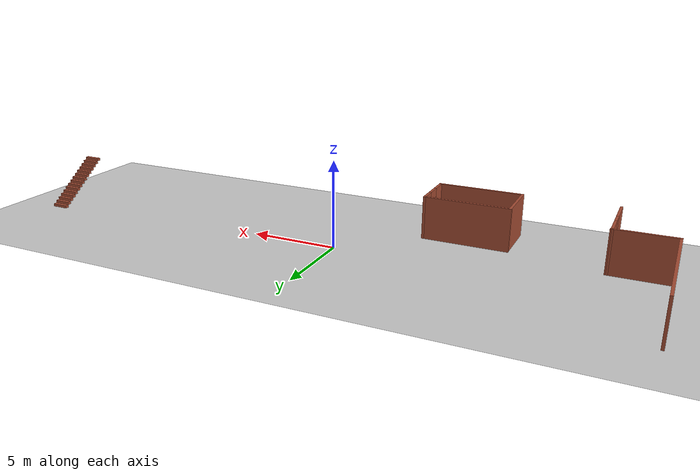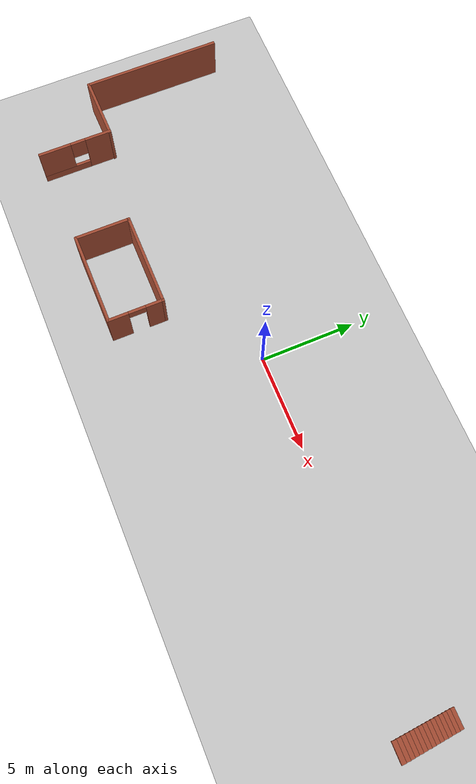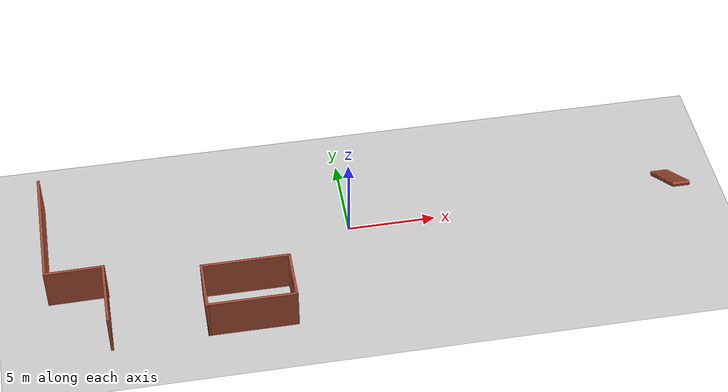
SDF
<sdf version="1.6">
 <world name="default">
  <model name="ground_plane">
   <static>1</static>
   <link name="link">
    <collision name="collision">
     <geometry><plane><normal>0 0 1</normal><size>100 100</size></plane></geometry>
     <surface><friction><ode><mu>100</mu><mu2>50</mu2></ode></friction></surface>
    </collision>
    <visual name="visual">
     <cast_shadows>0</cast_shadows>
     <geometry><plane><normal>0 0 1</normal><size>100 100</size></plane></geometry>
     <material>
      <script><uri>file://media/materials/scripts/gazebo.material</uri><name>Gazebo/Grey</name></script>
     </material>
    </visual>
   </link>
  </model>
  <model name="wonkyBuilding">
   <link name="Stairs_1">
    <visual name="Stairs_1_Visual_0">
     <pose>24.2059 11.9696 0.083333 0 -0 0</pose>
     <geometry><box><size>1 0.233333 0.166667</size></box></geometry>
     <material>
      <script><uri>file://media/materials/scripts/gazebo.material</uri><name>Gazebo/Bricks</name></script>
      <ambient>1 1 1 1</ambient>
      <shader type="pixel"/>
      <diffuse>1 1 1 1</diffuse>
      <specular>0.2 0.2 0.2 1</specular>
      <emissive>0 0 0 1</emissive>
     </material>
     <meta><layer>0</layer></meta>
    </visual>
    <visual name="Stairs_1_Visual_1">
     <pose>24.2059 11.7363 0.25 0 -0 0</pose>
     <geometry><box><size>1 0.233333 0.166667</size></box></geometry>
     <material>
      <script><uri>file://media/materials/scripts/gazebo.material</uri><name>Gazebo/Bricks</name></script>
      <ambient>1 1 1 1</ambient>
      <shader type="pixel"/>
      <diffuse>1 1 1 1</diffuse>
      <specular>0.2 0.2 0.2 1</specular>
      <emissive>0 0 0 1</emissive>
     </material>
     <meta><layer>0</layer></meta>
    </visual>
    <visual name="Stairs_1_Visual_2">
     <pose>24.2059 11.5029 0.416667 0 -0 0</pose>
     <geometry><box><size>1 0.233333 0.166667</size></box></geometry>
     <material>
      <script><uri>file://media/materials/scripts/gazebo.material</uri><name>Gazebo/Bricks</name></script>
      <ambient>1 1 1 1</ambient>
      <shader type="pixel"/>
      <diffuse>1 1 1 1</diffuse>
      <specular>0.2 0.2 0.2 1</specular>
      <emissive>0 0 0 1</emissive>
     </material>
     <meta><layer>0</layer></meta>
    </visual>
    <visual name="Stairs_1_Visual_3">
     <pose>24.2059 11.2696 0.583333 0 -0 0</pose>
     <geometry><box><size>1 0.233333 0.166667</size></box></geometry>
     <material>
      <script><uri>file://media/materials/scripts/gazebo.material</uri><name>Gazebo/Bricks</name></script>
      <ambient>1 1 1 1</ambient>
      <shader type="pixel"/>
      <diffuse>1 1 1 1</diffuse>
      <specular>0.2 0.2 0.2 1</specular>
      <emissive>0 0 0 1</emissive>
     </material>
     <meta><layer>0</layer></meta>
    </visual>
    <visual name="Stairs_1_Visual_4">
     <pose>24.2059 11.0363 0.75 0 -0 0</pose>
     <geometry><box><size>1 0.233333 0.166667</size></box></geometry>
     <material>
      <script><uri>file://media/materials/scripts/gazebo.material</uri><name>Gazebo/Bricks</name></script>
      <ambient>1 1 1 1</ambient>
      <shader type="pixel"/>
      <diffuse>1 1 1 1</diffuse>
      <specular>0.2 0.2 0.2 1</specular>
      <emissive>0 0 0 1</emissive>
     </material>
     <meta><layer>0</layer></meta>
    </visual>
    <visual name="Stairs_1_Visual_5">
     <pose>24.2059 10.8029 0.916667 0 -0 0</pose>
     <geometry><box><size>1 0.233333 0.166667</size></box></geometry>
     <material>
      <script><uri>file://media/materials/scripts/gazebo.material</uri><name>Gazebo/Bricks</name></script>
      <ambient>1 1 1 1</ambient>
      <shader type="pixel"/>
      <diffuse>1 1 1 1</diffuse>
      <specular>0.2 0.2 0.2 1</specular>
      <emissive>0 0 0 1</emissive>
     </material>
     <meta><layer>0</layer></meta>
    </visual>
    <visual name="Stairs_1_Visual_6">
     <pose>24.2059 10.5696 1.08333 0 -0 0</pose>
     <geometry><box><size>1 0.233333 0.166667</size></box></geometry>
     <material>
      <script><uri>file://media/materials/scripts/gazebo.material</uri><name>Gazebo/Bricks</name></script>
      <ambient>1 1 1 1</ambient>
      <shader type="pixel"/>
      <diffuse>1 1 1 1</diffuse>
      <specular>0.2 0.2 0.2 1</specular>
      <emissive>0 0 0 1</emissive>
     </material>
     <meta><layer>0</layer></meta>
    </visual>
    <visual name="Stairs_1_Visual_7">
     <pose>24.2059 10.3363 1.25 0 -0 0</pose>
     <geometry><box><size>1 0.233333 0.166667</size></box></geometry>
     <material>
      <script><uri>file://media/materials/scripts/gazebo.material</uri><name>Gazebo/Bricks</name></script>
      <ambient>1 1 1 1</ambient>
      <shader type="pixel"/>
      <diffuse>1 1 1 1</diffuse>
      <specular>0.2 0.2 0.2 1</specular>
      <emissive>0 0 0 1</emissive>
     </material>
     <meta><layer>0</layer></meta>
    </visual>
    <visual name="Stairs_1_Visual_8">
     <pose>24.2059 10.1029 1.41667 0 -0 0</pose>
     <geometry><box><size>1 0.233333 0.166667</size></box></geometry>
     <material>
      <script><uri>file://media/materials/scripts/gazebo.material</uri><name>Gazebo/Bricks</name></script>
      <ambient>1 1 1 1</ambient>
      <shader type="pixel"/>
      <diffuse>1 1 1 1</diffuse>
      <specular>0.2 0.2 0.2 1</specular>
      <emissive>0 0 0 1</emissive>
     </material>
     <meta><layer>0</layer></meta>
    </visual>
    <visual name="Stairs_1_Visual_9">
     <pose>24.2059 9.86959 1.58333 0 -0 0</pose>
     <geometry><box><size>1 0.233333 0.166667</size></box></geometry>
     <material>
      <script><uri>file://media/materials/scripts/gazebo.material</uri><name>Gazebo/Bricks</name></script>
      <ambient>1 1 1 1</ambient>
      <shader type="pixel"/>
      <diffuse>1 1 1 1</diffuse>
      <specular>0.2 0.2 0.2 1</specular>
      <emissive>0 0 0 1</emissive>
     </material>
     <meta><layer>0</layer></meta>
    </visual>
    <visual name="Stairs_1_Visual_10">
     <pose>24.2059 9.63626 1.75 0 -0 0</pose>
     <geometry><box><size>1 0.233333 0.166667</size></box></geometry>
     <material>
      <script><uri>file://media/materials/scripts/gazebo.material</uri><name>Gazebo/Bricks</name></script>
      <ambient>1 1 1 1</ambient>
      <shader type="pixel"/>
      <diffuse>1 1 1 1</diffuse>
      <specular>0.2 0.2 0.2 1</specular>
      <emissive>0 0 0 1</emissive>
     </material>
     <meta><layer>0</layer></meta>
    </visual>
    <visual name="Stairs_1_Visual_11">
     <pose>24.2059 9.40292 1.91667 0 -0 0</pose>
     <geometry><box><size>1 0.233333 0.166667</size></box></geometry>
     <material>
      <script><uri>file://media/materials/scripts/gazebo.material</uri><name>Gazebo/Bricks</name></script>
      <ambient>1 1 1 1</ambient>
      <shader type="pixel"/>
      <diffuse>1 1 1 1</diffuse>
      <specular>0.2 0.2 0.2 1</specular>
      <emissive>0 0 0 1</emissive>
     </material>
     <meta><layer>0</layer></meta>
    </visual>
    <visual name="Stairs_1_Visual_12">
     <pose>24.2059 9.16959 2.08333 0 -0 0</pose>
     <geometry><box><size>1 0.233333 0.166667</size></box></geometry>
     <material>
      <script><uri>file://media/materials/scripts/gazebo.material</uri><name>Gazebo/Bricks</name></script>
      <ambient>1 1 1 1</ambient>
      <shader type="pixel"/>
      <diffuse>1 1 1 1</diffuse>
      <specular>0.2 0.2 0.2 1</specular>
      <emissive>0 0 0 1</emissive>
     </material>
     <meta><layer>0</layer></meta>
    </visual>
    <visual name="Stairs_1_Visual_13">
     <pose>24.2059 8.93626 2.25 0 -0 0</pose>
     <geometry><box><size>1 0.233333 0.166667</size></box></geometry>
     <material>
      <script><uri>file://media/materials/scripts/gazebo.material</uri><name>Gazebo/Bricks</name></script>
      <ambient>1 1 1 1</ambient>
      <shader type="pixel"/>
      <diffuse>1 1 1 1</diffuse>
      <specular>0.2 0.2 0.2 1</specular>
      <emissive>0 0 0 1</emissive>
     </material>
     <meta><layer>0</layer></meta>
    </visual>
    <visual name="Stairs_1_Visual_14">
     <pose>24.2059 8.70292 2.41667 0 -0 0</pose>
     <geometry><box><size>1 0.233333 0.166667</size></box></geometry>
     <material>
      <script><uri>file://media/materials/scripts/gazebo.material</uri><name>Gazebo/Bricks</name></script>
      <ambient>1 1 1 1</ambient>
      <shader type="pixel"/>
      <diffuse>1 1 1 1</diffuse>
      <specular>0.2 0.2 0.2 1</specular>
      <emissive>0 0 0 1</emissive>
     </material>
     <meta><layer>0</layer></meta>
    </visual>
    <collision name="Stairs_1_Collision_0">
     <pose>24.2059 11.9696 0.083333 0 -0 0</pose>
     <geometry><box><size>1 0.233333 0.166667</size></box></geometry>
     <surface>
      <friction>
       <ode><mu>1</mu><mu2>1</mu2><fdir1>0 0 0</fdir1><slip1>0</slip1><slip2>0</slip2></ode>
       <torsional>
        <coefficient>1</coefficient>
        <patch_radius>0</patch_radius>
        <surface_radius>0</surface_radius>
        <use_patch_radius>1</use_patch_radius>
        <ode><slip>0</slip></ode>
       </torsional>
      </friction>
      <bounce><restitution_coefficient>0</restitution_coefficient><threshold>1e+06</threshold></bounce>
      <contact>
       <collide_without_contact>0</collide_without_contact>
       <collide_without_contact_bitmask>1</collide_without_contact_bitmask>
       <collide_bitmask>1</collide_bitmask>
       <ode>
        <soft_cfm>0</soft_cfm>
        <soft_erp>0.2</soft_erp>
        <kp>1e+13</kp>
        <kd>1</kd>
        <max_vel>0.01</max_vel>
        <min_depth>0</min_depth>
       </ode>
       <bullet>
        <split_impulse>1</split_impulse>
        <split_impulse_penetration_threshold>-0.01</split_impulse_penetration_threshold>
        <soft_cfm>0</soft_cfm>
        <soft_erp>0.2</soft_erp>
        <kp>1e+13</kp>
        <kd>1</kd>
       </bullet>
      </contact>
     </surface>
    </collision>
    <collision name="Stairs_1_Collision_1">
     <pose>24.2059 11.7363 0.25 0 -0 0</pose>
     <geometry><box><size>1 0.233333 0.166667</size></box></geometry>
     <surface>
      <friction>
       <ode><mu>1</mu><mu2>1</mu2><fdir1>0 0 0</fdir1><slip1>0</slip1><slip2>0</slip2></ode>
       <torsional>
        <coefficient>1</coefficient>
        <patch_radius>0</patch_radius>
        <surface_radius>0</surface_radius>
        <use_patch_radius>1</use_patch_radius>
        <ode><slip>0</slip></ode>
       </torsional>
      </friction>
      <bounce><restitution_coefficient>0</restitution_coefficient><threshold>1e+06</threshold></bounce>
      <contact>
       <collide_without_contact>0</collide_without_contact>
       <collide_without_contact_bitmask>1</collide_without_contact_bitmask>
       <collide_bitmask>1</collide_bitmask>
       <ode>
        <soft_cfm>0</soft_cfm>
        <soft_erp>0.2</soft_erp>
        <kp>1e+13</kp>
        <kd>1</kd>
        <max_vel>0.01</max_vel>
        <min_depth>0</min_depth>
       </ode>
       <bullet>
        <split_impulse>1</split_impulse>
        <split_impulse_penetration_threshold>-0.01</split_impulse_penetration_threshold>
        <soft_cfm>0</soft_cfm>
        <soft_erp>0.2</soft_erp>
        <kp>1e+13</kp>
        <kd>1</kd>
       </bullet>
      </contact>
     </surface>
    </collision>
    <collision name="Stairs_1_Collision_2">
     <pose>24.2059 11.5029 0.416667 0 -0 0</pose>
     <geometry><box><size>1 0.233333 0.166667</size></box></geometry>
     <surface>
      <friction>
       <ode><mu>1</mu><mu2>1</mu2><fdir1>0 0 0</fdir1><slip1>0</slip1><slip2>0</slip2></ode>
       <torsional>
        <coefficient>1</coefficient>
        <patch_radius>0</patch_radius>
        <surface_radius>0</surface_radius>
        <use_patch_radius>1</use_patch_radius>
        <ode><slip>0</slip></ode>
       </torsional>
      </friction>
      <bounce><restitution_coefficient>0</restitution_coefficient><threshold>1e+06</threshold></bounce>
      <contact>
       <collide_without_contact>0</collide_without_contact>
       <collide_without_contact_bitmask>1</collide_without_contact_bitmask>
       <collide_bitmask>1</collide_bitmask>
       <ode>
        <soft_cfm>0</soft_cfm>
        <soft_erp>0.2</soft_erp>
        <kp>1e+13</kp>
        <kd>1</kd>
        <max_vel>0.01</max_vel>
        <min_depth>0</min_depth>
       </ode>
       <bullet>
        <split_impulse>1</split_impulse>
        <split_impulse_penetration_threshold>-0.01</split_impulse_penetration_threshold>
        <soft_cfm>0</soft_cfm>
        <soft_erp>0.2</soft_erp>
        <kp>1e+13</kp>
        <kd>1</kd>
       </bullet>
      </contact>
     </surface>
    </collision>
    <collision name="Stairs_1_Collision_9">
     <pose>24.2059 9.86959 1.58333 0 -0 0</pose>
     <geometry><box><size>1 0.233333 0.166667</size></box></geometry>
     <surface>
      <friction>
       <ode><mu>1</mu><mu2>1</mu2><fdir1>0 0 0</fdir1><slip1>0</slip1><slip2>0</slip2></ode>
       <torsional>
        <coefficient>1</coefficient>
        <patch_radius>0</patch_radius>
        <surface_radius>0</surface_radius>
        <use_patch_radius>1</use_patch_radius>
        <ode><slip>0</slip></ode>
       </torsional>
      </friction>
      <bounce><restitution_coefficient>0</restitution_coefficient><threshold>1e+06</threshold></bounce>
      <contact>
       <collide_without_contact>0</collide_without_contact>
       <collide_without_contact_bitmask>1</collide_without_contact_bitmask>
       <collide_bitmask>1</collide_bitmask>
       <ode>
        <soft_cfm>0</soft_cfm>
        <soft_erp>0.2</soft_erp>
        <kp>1e+13</kp>
        <kd>1</kd>
        <max_vel>0.01</max_vel>
        <min_depth>0</min_depth>
       </ode>
       <bullet>
        <split_impulse>1</split_impulse>
        <split_impulse_penetration_threshold>-0.01</split_impulse_penetration_threshold>
        <soft_cfm>0</soft_cfm>
        <soft_erp>0.2</soft_erp>
        <kp>1e+13</kp>
        <kd>1</kd>
       </bullet>
      </contact>
     </surface>
    </collision>
    <collision name="Stairs_1_Collision_3">
     <pose>24.2059 11.2696 0.583333 0 -0 0</pose>
     <geometry><box><size>1 0.233333 0.166667</size></box></geometry>
     <surface>
      <friction>
       <ode><mu>1</mu><mu2>1</mu2><fdir1>0 0 0</fdir1><slip1>0</slip1><slip2>0</slip2></ode>
       <torsional>
        <coefficient>1</coefficient>
        <patch_radius>0</patch_radius>
        <surface_radius>0</surface_radius>
        <use_patch_radius>1</use_patch_radius>
        <ode><slip>0</slip></ode>
       </torsional>
      </friction>
      <bounce><restitution_coefficient>0</restitution_coefficient><threshold>1e+06</threshold></bounce>
      <contact>
       <collide_without_contact>0</collide_without_contact>
       <collide_without_contact_bitmask>1</collide_without_contact_bitmask>
       <collide_bitmask>1</collide_bitmask>
       <ode>
        <soft_cfm>0</soft_cfm>
        <soft_erp>0.2</soft_erp>
        <kp>1e+13</kp>
        <kd>1</kd>
        <max_vel>0.01</max_vel>
        <min_depth>0</min_depth>
       </ode>
       <bullet>
        <split_impulse>1</split_impulse>
        <split_impulse_penetration_threshold>-0.01</split_impulse_penetration_threshold>
        <soft_cfm>0</soft_cfm>
        <soft_erp>0.2</soft_erp>
        <kp>1e+13</kp>
        <kd>1</kd>
       </bullet>
      </contact>
     </surface>
    </collision>
    <collision name="Stairs_1_Collision_5">
     <pose>24.2059 10.8029 0.916667 0 -0 0</pose>
     <geometry><box><size>1 0.233333 0.166667</size></box></geometry>
     <surface>
      <friction>
       <ode><mu>1</mu><mu2>1</mu2><fdir1>0 0 0</fdir1><slip1>0</slip1><slip2>0</slip2></ode>
       <torsional>
        <coefficient>1</coefficient>
        <patch_radius>0</patch_radius>
        <surface_radius>0</surface_radius>
        <use_patch_radius>1</use_patch_radius>
        <ode><slip>0</slip></ode>
       </torsional>
      </friction>
      <bounce><restitution_coefficient>0</restitution_coefficient><threshold>1e+06</threshold></bounce>
      <contact>
       <collide_without_contact>0</collide_without_contact>
       <collide_without_contact_bitmask>1</collide_without_contact_bitmask>
       <collide_bitmask>1</collide_bitmask>
       <ode>
        <soft_cfm>0</soft_cfm>
        <soft_erp>0.2</soft_erp>
        <kp>1e+13</kp>
        <kd>1</kd>
        <max_vel>0.01</max_vel>
        <min_depth>0</min_depth>
       </ode>
       <bullet>
        <split_impulse>1</split_impulse>
        <split_impulse_penetration_threshold>-0.01</split_impulse_penetration_threshold>
        <soft_cfm>0</soft_cfm>
        <soft_erp>0.2</soft_erp>
        <kp>1e+13</kp>
        <kd>1</kd>
       </bullet>
      </contact>
     </surface>
    </collision>
    <collision name="Stairs_1_Collision_4">
     <pose>24.2059 11.0363 0.75 0 -0 0</pose>
     <geometry><box><size>1 0.233333 0.166667</size></box></geometry>
     <surface>
      <friction>
       <ode><mu>1</mu><mu2>1</mu2><fdir1>0 0 0</fdir1><slip1>0</slip1><slip2>0</slip2></ode>
       <torsional>
        <coefficient>1</coefficient>
        <patch_radius>0</patch_radius>
        <surface_radius>0</surface_radius>
        <use_patch_radius>1</use_patch_radius>
        <ode><slip>0</slip></ode>
       </torsional>
      </friction>
      <bounce><restitution_coefficient>0</restitution_coefficient><threshold>1e+06</threshold></bounce>
      <contact>
       <collide_without_contact>0</collide_without_contact>
       <collide_without_contact_bitmask>1</collide_without_contact_bitmask>
       <collide_bitmask>1</collide_bitmask>
       <ode>
        <soft_cfm>0</soft_cfm>
        <soft_erp>0.2</soft_erp>
        <kp>1e+13</kp>
        <kd>1</kd>
        <max_vel>0.01</max_vel>
        <min_depth>0</min_depth>
       </ode>
       <bullet>
        <split_impulse>1</split_impulse>
        <split_impulse_penetration_threshold>-0.01</split_impulse_penetration_threshold>
        <soft_cfm>0</soft_cfm>
        <soft_erp>0.2</soft_erp>
        <kp>1e+13</kp>
        <kd>1</kd>
       </bullet>
      </contact>
     </surface>
    </collision>
    <collision name="Stairs_1_Collision_7">
     <pose>24.2059 10.3363 1.25 0 -0 0</pose>
     <geometry><box><size>1 0.233333 0.166667</size></box></geometry>
     <surface>
      <friction>
       <ode><mu>1</mu><mu2>1</mu2><fdir1>0 0 0</fdir1><slip1>0</slip1><slip2>0</slip2></ode>
       <torsional>
        <coefficient>1</coefficient>
        <patch_radius>0</patch_radius>
        <surface_radius>0</surface_radius>
        <use_patch_radius>1</use_patch_radius>
        <ode><slip>0</slip></ode>
       </torsional>
      </friction>
      <bounce><restitution_coefficient>0</restitution_coefficient><threshold>1e+06</threshold></bounce>
      <contact>
       <collide_without_contact>0</collide_without_contact>
       <collide_without_contact_bitmask>1</collide_without_contact_bitmask>
       <collide_bitmask>1</collide_bitmask>
       <ode>
        <soft_cfm>0</soft_cfm>
        <soft_erp>0.2</soft_erp>
        <kp>1e+13</kp>
        <kd>1</kd>
        <max_vel>0.01</max_vel>
        <min_depth>0</min_depth>
       </ode>
       <bullet>
        <split_impulse>1</split_impulse>
        <split_impulse_penetration_threshold>-0.01</split_impulse_penetration_threshold>
        <soft_cfm>0</soft_cfm>
        <soft_erp>0.2</soft_erp>
        <kp>1e+13</kp>
        <kd>1</kd>
       </bullet>
      </contact>
     </surface>
    </collision>
    <collision name="Stairs_1_Collision_6">
     <pose>24.2059 10.5696 1.08333 0 -0 0</pose>
     <geometry><box><size>1 0.233333 0.166667</size></box></geometry>
     <surface>
      <friction>
       <ode><mu>1</mu><mu2>1</mu2><fdir1>0 0 0</fdir1><slip1>0</slip1><slip2>0</slip2></ode>
       <torsional>
        <coefficient>1</coefficient>
        <patch_radius>0</patch_radius>
        <surface_radius>0</surface_radius>
        <use_patch_radius>1</use_patch_radius>
        <ode><slip>0</slip></ode>
       </torsional>
      </friction>
      <bounce><restitution_coefficient>0</restitution_coefficient><threshold>1e+06</threshold></bounce>
      <contact>
       <collide_without_contact>0</collide_without_contact>
       <collide_without_contact_bitmask>1</collide_without_contact_bitmask>
       <collide_bitmask>1</collide_bitmask>
       <ode>
        <soft_cfm>0</soft_cfm>
        <soft_erp>0.2</soft_erp>
        <kp>1e+13</kp>
        <kd>1</kd>
        <max_vel>0.01</max_vel>
        <min_depth>0</min_depth>
       </ode>
       <bullet>
        <split_impulse>1</split_impulse>
        <split_impulse_penetration_threshold>-0.01</split_impulse_penetration_threshold>
        <soft_cfm>0</soft_cfm>
        <soft_erp>0.2</soft_erp>
        <kp>1e+13</kp>
        <kd>1</kd>
       </bullet>
      </contact>
     </surface>
    </collision>
    <collision name="Stairs_1_Collision_10">
     <pose>24.2059 9.63626 1.75 0 -0 0</pose>
     <geometry><box><size>1 0.233333 0.166667</size></box></geometry>
     <surface>
      <friction>
       <ode><mu>1</mu><mu2>1</mu2><fdir1>0 0 0</fdir1><slip1>0</slip1><slip2>0</slip2></ode>
       <torsional>
        <coefficient>1</coefficient>
        <patch_radius>0</patch_radius>
        <surface_radius>0</surface_radius>
        <use_patch_radius>1</use_patch_radius>
        <ode><slip>0</slip></ode>
       </torsional>
      </friction>
      <bounce><restitution_coefficient>0</restitution_coefficient><threshold>1e+06</threshold></bounce>
      <contact>
       <collide_without_contact>0</collide_without_contact>
       <collide_without_contact_bitmask>1</collide_without_contact_bitmask>
       <collide_bitmask>1</collide_bitmask>
       <ode>
        <soft_cfm>0</soft_cfm>
        <soft_erp>0.2</soft_erp>
        <kp>1e+13</kp>
        <kd>1</kd>
        <max_vel>0.01</max_vel>
        <min_depth>0</min_depth>
       </ode>
       <bullet>
        <split_impulse>1</split_impulse>
        <split_impulse_penetration_threshold>-0.01</split_impulse_penetration_threshold>
        <soft_cfm>0</soft_cfm>
        <soft_erp>0.2</soft_erp>
        <kp>1e+13</kp>
        <kd>1</kd>
       </bullet>
      </contact>
     </surface>
    </collision>
    <collision name="Stairs_1_Collision_8">
     <pose>24.2059 10.1029 1.41667 0 -0 0</pose>
     <geometry><box><size>1 0.233333 0.166667</size></box></geometry>
     <surface>
      <friction>
       <ode><mu>1</mu><mu2>1</mu2><fdir1>0 0 0</fdir1><slip1>0</slip1><slip2>0</slip2></ode>
       <torsional>
        <coefficient>1</coefficient>
        <patch_radius>0</patch_radius>
        <surface_radius>0</surface_radius>
        <use_patch_radius>1</use_patch_radius>
        <ode><slip>0</slip></ode>
       </torsional>
      </friction>
      <bounce><restitution_coefficient>0</restitution_coefficient><threshold>1e+06</threshold></bounce>
      <contact>
       <collide_without_contact>0</collide_without_contact>
       <collide_without_contact_bitmask>1</collide_without_contact_bitmask>
       <collide_bitmask>1</collide_bitmask>
       <ode>
        <soft_cfm>0</soft_cfm>
        <soft_erp>0.2</soft_erp>
        <kp>1e+13</kp>
        <kd>1</kd>
        <max_vel>0.01</max_vel>
        <min_depth>0</min_depth>
       </ode>
       <bullet>
        <split_impulse>1</split_impulse>
        <split_impulse_penetration_threshold>-0.01</split_impulse_penetration_threshold>
        <soft_cfm>0</soft_cfm>
        <soft_erp>0.2</soft_erp>
        <kp>1e+13</kp>
        <kd>1</kd>
       </bullet>
      </contact>
     </surface>
    </collision>
    <collision name="Stairs_1_Collision_11">
     <pose>24.2059 9.40292 1.91667 0 -0 0</pose>
     <geometry><box><size>1 0.233333 0.166667</size></box></geometry>
     <surface>
      <friction>
       <ode><mu>1</mu><mu2>1</mu2><fdir1>0 0 0</fdir1><slip1>0</slip1><slip2>0</slip2></ode>
       <torsional>
        <coefficient>1</coefficient>
        <patch_radius>0</patch_radius>
        <surface_radius>0</surface_radius>
        <use_patch_radius>1</use_patch_radius>
        <ode><slip>0</slip></ode>
       </torsional>
      </friction>
      <bounce><restitution_coefficient>0</restitution_coefficient><threshold>1e+06</threshold></bounce>
      <contact>
       <collide_without_contact>0</collide_without_contact>
       <collide_without_contact_bitmask>1</collide_without_contact_bitmask>
       <collide_bitmask>1</collide_bitmask>
       <ode>
        <soft_cfm>0</soft_cfm>
        <soft_erp>0.2</soft_erp>
        <kp>1e+13</kp>
        <kd>1</kd>
        <max_vel>0.01</max_vel>
        <min_depth>0</min_depth>
       </ode>
       <bullet>
        <split_impulse>1</split_impulse>
        <split_impulse_penetration_threshold>-0.01</split_impulse_penetration_threshold>
        <soft_cfm>0</soft_cfm>
        <soft_erp>0.2</soft_erp>
        <kp>1e+13</kp>
        <kd>1</kd>
       </bullet>
      </contact>
     </surface>
    </collision>
    <collision name="Stairs_1_Collision_12">
     <pose>24.2059 9.16959 2.08333 0 -0 0</pose>
     <geometry><box><size>1 0.233333 0.166667</size></box></geometry>
     <surface>
      <friction>
       <ode><mu>1</mu><mu2>1</mu2><fdir1>0 0 0</fdir1><slip1>0</slip1><slip2>0</slip2></ode>
       <torsional>
        <coefficient>1</coefficient>
        <patch_radius>0</patch_radius>
        <surface_radius>0</surface_radius>
        <use_patch_radius>1</use_patch_radius>
        <ode><slip>0</slip></ode>
       </torsional>
      </friction>
      <bounce><restitution_coefficient>0</restitution_coefficient><threshold>1e+06</threshold></bounce>
      <contact>
       <collide_without_contact>0</collide_without_contact>
       <collide_without_contact_bitmask>1</collide_without_contact_bitmask>
       <collide_bitmask>1</collide_bitmask>
       <ode>
        <soft_cfm>0</soft_cfm>
        <soft_erp>0.2</soft_erp>
        <kp>1e+13</kp>
        <kd>1</kd>
        <max_vel>0.01</max_vel>
        <min_depth>0</min_depth>
       </ode>
       <bullet>
        <split_impulse>1</split_impulse>
        <split_impulse_penetration_threshold>-0.01</split_impulse_penetration_threshold>
        <soft_cfm>0</soft_cfm>
        <soft_erp>0.2</soft_erp>
        <kp>1e+13</kp>
        <kd>1</kd>
       </bullet>
      </contact>
     </surface>
    </collision>
    <collision name="Stairs_1_Collision_13">
     <pose>24.2059 8.93626 2.25 0 -0 0</pose>
     <geometry><box><size>1 0.233333 0.166667</size></box></geometry>
     <surface>
      <friction>
       <ode><mu>1</mu><mu2>1</mu2><fdir1>0 0 0</fdir1><slip1>0</slip1><slip2>0</slip2></ode>
       <torsional>
        <coefficient>1</coefficient>
        <patch_radius>0</patch_radius>
        <surface_radius>0</surface_radius>
        <use_patch_radius>1</use_patch_radius>
        <ode><slip>0</slip></ode>
       </torsional>
      </friction>
      <bounce><restitution_coefficient>0</restitution_coefficient><threshold>1e+06</threshold></bounce>
      <contact>
       <collide_without_contact>0</collide_without_contact>
       <collide_without_contact_bitmask>1</collide_without_contact_bitmask>
       <collide_bitmask>1</collide_bitmask>
       <ode>
        <soft_cfm>0</soft_cfm>
        <soft_erp>0.2</soft_erp>
        <kp>1e+13</kp>
        <kd>1</kd>
        <max_vel>0.01</max_vel>
        <min_depth>0</min_depth>
       </ode>
       <bullet>
        <split_impulse>1</split_impulse>
        <split_impulse_penetration_threshold>-0.01</split_impulse_penetration_threshold>
        <soft_cfm>0</soft_cfm>
        <soft_erp>0.2</soft_erp>
        <kp>1e+13</kp>
        <kd>1</kd>
       </bullet>
      </contact>
     </surface>
    </collision>
    <collision name="Stairs_1_Collision_14">
     <pose>24.2059 8.70292 2.41667 0 -0 0</pose>
     <geometry><box><size>1 0.233333 0.166667</size></box></geometry>
     <surface>
      <friction>
       <ode><mu>1</mu><mu2>1</mu2><fdir1>0 0 0</fdir1><slip1>0</slip1><slip2>0</slip2></ode>
       <torsional>
        <coefficient>1</coefficient>
        <patch_radius>0</patch_radius>
        <surface_radius>0</surface_radius>
        <use_patch_radius>1</use_patch_radius>
        <ode><slip>0</slip></ode>
       </torsional>
      </friction>
      <bounce><restitution_coefficient>0</restitution_coefficient><threshold>1e+06</threshold></bounce>
      <contact>
       <collide_without_contact>0</collide_without_contact>
       <collide_without_contact_bitmask>1</collide_without_contact_bitmask>
       <collide_bitmask>1</collide_bitmask>
       <ode>
        <soft_cfm>0</soft_cfm>
        <soft_erp>0.2</soft_erp>
        <kp>1e+13</kp>
        <kd>1</kd>
        <max_vel>0.01</max_vel>
        <min_depth>0</min_depth>
       </ode>
       <bullet>
        <split_impulse>1</split_impulse>
        <split_impulse_penetration_threshold>-0.01</split_impulse_penetration_threshold>
        <soft_cfm>0</soft_cfm>
        <soft_erp>0.2</soft_erp>
        <kp>1e+13</kp>
        <kd>1</kd>
       </bullet>
      </contact>
     </surface>
    </collision>
   </link>
   <link name="Wall_40">
    <pose>-11.9169 11.4719 0 0 0 -1.5708</pose>
    <visual name="Wall_40_Visual">
     <pose>0 0 1.25 0 -0 0</pose>
     <geometry><box><size>7.25 0.15 2.5</size></box></geometry>
     <material>
      <script><uri>file://media/materials/scripts/gazebo.material</uri><name>Gazebo/Bricks</name></script>
      <ambient>1 1 1 1</ambient>
      <shader type="pixel"/>
      <diffuse>1 1 1 1</diffuse>
      <specular>0.2 0.2 0.2 1</specular>
      <emissive>0 0 0 1</emissive>
     </material>
     <meta><layer>0</layer></meta>
    </visual>
    <collision name="Wall_40_Collision">
     <pose>0 0 1.25 0 -0 0</pose>
     <geometry><box><size>7.25 0.15 2.5</size></box></geometry>
     <surface>
      <friction>
       <ode><mu>1</mu><mu2>1</mu2><fdir1>0 0 0</fdir1><slip1>0</slip1><slip2>0</slip2></ode>
       <torsional>
        <coefficient>1</coefficient>
        <patch_radius>0</patch_radius>
        <surface_radius>0</surface_radius>
        <use_patch_radius>1</use_patch_radius>
        <ode><slip>0</slip></ode>
       </torsional>
      </friction>
      <bounce><restitution_coefficient>0</restitution_coefficient><threshold>1e+06</threshold></bounce>
      <contact>
       <collide_without_contact>0</collide_without_contact>
       <collide_without_contact_bitmask>1</collide_without_contact_bitmask>
       <collide_bitmask>1</collide_bitmask>
       <ode>
        <soft_cfm>0</soft_cfm>
        <soft_erp>0.2</soft_erp>
        <kp>1e+13</kp>
        <kd>1</kd>
        <max_vel>0.01</max_vel>
        <min_depth>0</min_depth>
       </ode>
       <bullet>
        <split_impulse>1</split_impulse>
        <split_impulse_penetration_threshold>-0.01</split_impulse_penetration_threshold>
        <soft_cfm>0</soft_cfm>
        <soft_erp>0.2</soft_erp>
        <kp>1e+13</kp>
        <kd>1</kd>
       </bullet>
      </contact>
     </surface>
    </collision>
   </link>
   <link name="Wall_41">
    <pose>-10.3152 7.83416 0 0 -0 0.011463</pose>
    <visual name="Wall_41_Visual">
     <pose>0 0 1.25 0 -0 0</pose>
     <geometry><box><size>3.35347 0.15 2.5</size></box></geometry>
     <material>
      <script><uri>file://media/materials/scripts/gazebo.material</uri><name>Gazebo/Bricks</name></script>
      <ambient>1 1 1 1</ambient>
      <shader type="pixel"/>
      <diffuse>1 1 1 1</diffuse>
      <specular>0.2 0.2 0.2 1</specular>
      <emissive>0 0 0 1</emissive>
     </material>
     <meta><layer>0</layer></meta>
    </visual>
    <collision name="Wall_41_Collision">
     <pose>0 0 1.25 0 -0 0</pose>
     <geometry><box><size>3.35347 0.15 2.5</size></box></geometry>
     <surface>
      <friction>
       <ode><mu>1</mu><mu2>1</mu2><fdir1>0 0 0</fdir1><slip1>0</slip1><slip2>0</slip2></ode>
       <torsional>
        <coefficient>1</coefficient>
        <patch_radius>0</patch_radius>
        <surface_radius>0</surface_radius>
        <use_patch_radius>1</use_patch_radius>
        <ode><slip>0</slip></ode>
       </torsional>
      </friction>
      <bounce><restitution_coefficient>0</restitution_coefficient><threshold>1e+06</threshold></bounce>
      <contact>
       <collide_without_contact>0</collide_without_contact>
       <collide_without_contact_bitmask>1</collide_without_contact_bitmask>
       <collide_bitmask>1</collide_bitmask>
       <ode>
        <soft_cfm>0</soft_cfm>
        <soft_erp>0.2</soft_erp>
        <kp>1e+13</kp>
        <kd>1</kd>
        <max_vel>0.01</max_vel>
        <min_depth>0</min_depth>
       </ode>
       <bullet>
        <split_impulse>1</split_impulse>
        <split_impulse_penetration_threshold>-0.01</split_impulse_penetration_threshold>
        <soft_cfm>0</soft_cfm>
        <soft_erp>0.2</soft_erp>
        <kp>1e+13</kp>
        <kd>1</kd>
       </bullet>
      </contact>
     </surface>
    </collision>
   </link>
   <link name="Wall_42">
    <pose>-8.74827 5.92752 0 0 0 -1.5708</pose>
    <visual name="Wall_42_Visual_0">
     <pose>-1.27852 0 1.25 0 -0 0</pose>
     <geometry><box><size>1.44296 0.15 2.5</size></box></geometry>
     <material>
      <script><uri>file://media/materials/scripts/gazebo.material</uri><name>Gazebo/Bricks</name></script>
      <ambient>1 1 1 1</ambient>
      <shader type="pixel"/>
      <diffuse>1 1 1 1</diffuse>
      <specular>0.2 0.2 0.2 1</specular>
      <emissive>0 0 0 1</emissive>
     </material>
     <meta><layer>0</layer></meta>
    </visual>
    <visual name="Wall_42_Visual_1">
     <pose>0.721479 0 0.25 0 -0 0</pose>
     <geometry><box><size>2.55704 0.15 0.5</size></box></geometry>
     <material>
      <script><uri>file://media/materials/scripts/gazebo.material</uri><name>Gazebo/Bricks</name></script>
      <ambient>1 1 1 1</ambient>
      <shader type="pixel"/>
      <diffuse>1 1 1 1</diffuse>
      <specular>0.2 0.2 0.2 1</specular>
      <emissive>0 0 0 1</emissive>
     </material>
     <meta><layer>0</layer></meta>
    </visual>
    <visual name="Wall_42_Visual_2">
     <pose>1.12148 0 1.5 0 -0 0</pose>
     <geometry><box><size>1.75704 0.15 2</size></box></geometry>
     <material>
      <script><uri>file://media/materials/scripts/gazebo.material</uri><name>Gazebo/Bricks</name></script>
      <ambient>1 1 1 1</ambient>
      <shader type="pixel"/>
      <diffuse>1 1 1 1</diffuse>
      <specular>0.2 0.2 0.2 1</specular>
      <emissive>0 0 0 1</emissive>
     </material>
     <meta><layer>0</layer></meta>
    </visual>
    <visual name="Wall_42_Visual_3">
     <pose>-0.157042 0 1.9 0 -0 0</pose>
     <geometry><box><size>0.8 0.15 1.2</size></box></geometry>
     <material>
      <script><uri>file://media/materials/scripts/gazebo.material</uri><name>Gazebo/Bricks</name></script>
      <ambient>1 1 1 1</ambient>
      <shader type="pixel"/>
      <diffuse>1 1 1 1</diffuse>
      <specular>0.2 0.2 0.2 1</specular>
      <emissive>0 0 0 1</emissive>
     </material>
     <meta><layer>0</layer></meta>
    </visual>
    <collision name="Wall_42_Collision_0">
     <pose>-1.27852 0 1.25 0 -0 0</pose>
     <geometry><box><size>1.44296 0.15 2.5</size></box></geometry>
     <surface>
      <friction>
       <ode><mu>1</mu><mu2>1</mu2><fdir1>0 0 0</fdir1><slip1>0</slip1><slip2>0</slip2></ode>
       <torsional>
        <coefficient>1</coefficient>
        <patch_radius>0</patch_radius>
        <surface_radius>0</surface_radius>
        <use_patch_radius>1</use_patch_radius>
        <ode><slip>0</slip></ode>
       </torsional>
      </friction>
      <bounce><restitution_coefficient>0</restitution_coefficient><threshold>1e+06</threshold></bounce>
      <contact>
       <collide_without_contact>0</collide_without_contact>
       <collide_without_contact_bitmask>1</collide_without_contact_bitmask>
       <collide_bitmask>1</collide_bitmask>
       <ode>
        <soft_cfm>0</soft_cfm>
        <soft_erp>0.2</soft_erp>
        <kp>1e+13</kp>
        <kd>1</kd>
        <max_vel>0.01</max_vel>
        <min_depth>0</min_depth>
       </ode>
       <bullet>
        <split_impulse>1</split_impulse>
        <split_impulse_penetration_threshold>-0.01</split_impulse_penetration_threshold>
        <soft_cfm>0</soft_cfm>
        <soft_erp>0.2</soft_erp>
        <kp>1e+13</kp>
        <kd>1</kd>
       </bullet>
      </contact>
     </surface>
    </collision>
    <collision name="Wall_42_Collision_1">
     <pose>0.721479 0 0.25 0 -0 0</pose>
     <geometry><box><size>2.55704 0.15 0.5</size></box></geometry>
     <surface>
      <friction>
       <ode><mu>1</mu><mu2>1</mu2><fdir1>0 0 0</fdir1><slip1>0</slip1><slip2>0</slip2></ode>
       <torsional>
        <coefficient>1</coefficient>
        <patch_radius>0</patch_radius>
        <surface_radius>0</surface_radius>
        <use_patch_radius>1</use_patch_radius>
        <ode><slip>0</slip></ode>
       </torsional>
      </friction>
      <bounce><restitution_coefficient>0</restitution_coefficient><threshold>1e+06</threshold></bounce>
      <contact>
       <collide_without_contact>0</collide_without_contact>
       <collide_without_contact_bitmask>1</collide_without_contact_bitmask>
       <collide_bitmask>1</collide_bitmask>
       <ode>
        <soft_cfm>0</soft_cfm>
        <soft_erp>0.2</soft_erp>
        <kp>1e+13</kp>
        <kd>1</kd>
        <max_vel>0.01</max_vel>
        <min_depth>0</min_depth>
       </ode>
       <bullet>
        <split_impulse>1</split_impulse>
        <split_impulse_penetration_threshold>-0.01</split_impulse_penetration_threshold>
        <soft_cfm>0</soft_cfm>
        <soft_erp>0.2</soft_erp>
        <kp>1e+13</kp>
        <kd>1</kd>
       </bullet>
      </contact>
     </surface>
    </collision>
    <collision name="Wall_42_Collision_2">
     <pose>1.12148 0 1.5 0 -0 0</pose>
     <geometry><box><size>1.75704 0.15 2</size></box></geometry>
     <surface>
      <friction>
       <ode><mu>1</mu><mu2>1</mu2><fdir1>0 0 0</fdir1><slip1>0</slip1><slip2>0</slip2></ode>
       <torsional>
        <coefficient>1</coefficient>
        <patch_radius>0</patch_radius>
        <surface_radius>0</surface_radius>
        <use_patch_radius>1</use_patch_radius>
        <ode><slip>0</slip></ode>
       </torsional>
      </friction>
      <bounce><restitution_coefficient>0</restitution_coefficient><threshold>1e+06</threshold></bounce>
      <contact>
       <collide_without_contact>0</collide_without_contact>
       <collide_without_contact_bitmask>1</collide_without_contact_bitmask>
       <collide_bitmask>1</collide_bitmask>
       <ode>
        <soft_cfm>0</soft_cfm>
        <soft_erp>0.2</soft_erp>
        <kp>1e+13</kp>
        <kd>1</kd>
        <max_vel>0.01</max_vel>
        <min_depth>0</min_depth>
       </ode>
       <bullet>
        <split_impulse>1</split_impulse>
        <split_impulse_penetration_threshold>-0.01</split_impulse_penetration_threshold>
        <soft_cfm>0</soft_cfm>
        <soft_erp>0.2</soft_erp>
        <kp>1e+13</kp>
        <kd>1</kd>
       </bullet>
      </contact>
     </surface>
    </collision>
    <collision name="Wall_42_Collision_3">
     <pose>-0.157042 0 1.9 0 -0 0</pose>
     <geometry><box><size>0.8 0.15 1.2</size></box></geometry>
     <surface>
      <friction>
       <ode><mu>1</mu><mu2>1</mu2><fdir1>0 0 0</fdir1><slip1>0</slip1><slip2>0</slip2></ode>
       <torsional>
        <coefficient>1</coefficient>
        <patch_radius>0</patch_radius>
        <surface_radius>0</surface_radius>
        <use_patch_radius>1</use_patch_radius>
        <ode><slip>0</slip></ode>
       </torsional>
      </friction>
      <bounce><restitution_coefficient>0</restitution_coefficient><threshold>1e+06</threshold></bounce>
      <contact>
       <collide_without_contact>0</collide_without_contact>
       <collide_without_contact_bitmask>1</collide_without_contact_bitmask>
       <collide_bitmask>1</collide_bitmask>
       <ode>
        <soft_cfm>0</soft_cfm>
        <soft_erp>0.2</soft_erp>
        <kp>1e+13</kp>
        <kd>1</kd>
        <max_vel>0.01</max_vel>
        <min_depth>0</min_depth>
       </ode>
       <bullet>
        <split_impulse>1</split_impulse>
        <split_impulse_penetration_threshold>-0.01</split_impulse_penetration_threshold>
        <soft_cfm>0</soft_cfm>
        <soft_erp>0.2</soft_erp>
        <kp>1e+13</kp>
        <kd>1</kd>
       </bullet>
      </contact>
     </surface>
    </collision>
   </link>
   <link name="Wall_48">
    <pose>-3.444 5.5569 0 0 0 -1.5708</pose>
    <visual name="Wall_48_Visual">
     <pose>0 0 1.25 0 -0 0</pose>
     <geometry><box><size>3 0.15 2.5</size></box></geometry>
     <material>
      <script><uri>file://media/materials/scripts/gazebo.material</uri><name>Gazebo/Bricks</name></script>
      <ambient>1 1 1 1</ambient>
      <shader type="pixel"/>
      <diffuse>1 1 1 1</diffuse>
      <specular>0.2 0.2 0.2 1</specular>
      <emissive>0 0 0 1</emissive>
     </material>
     <meta><layer>0</layer></meta>
    </visual>
    <collision name="Wall_48_Collision">
     <pose>0 0 1.25 0 -0 0</pose>
     <geometry><box><size>3 0.15 2.5</size></box></geometry>
     <surface>
      <friction>
       <ode><mu>1</mu><mu2>1</mu2><fdir1>0 0 0</fdir1><slip1>0</slip1><slip2>0</slip2></ode>
       <torsional>
        <coefficient>1</coefficient>
        <patch_radius>0</patch_radius>
        <surface_radius>0</surface_radius>
        <use_patch_radius>1</use_patch_radius>
        <ode><slip>0</slip></ode>
       </torsional>
      </friction>
      <bounce><restitution_coefficient>0</restitution_coefficient><threshold>1e+06</threshold></bounce>
      <contact>
       <collide_without_contact>0</collide_without_contact>
       <collide_without_contact_bitmask>1</collide_without_contact_bitmask>
       <collide_bitmask>1</collide_bitmask>
       <ode>
        <soft_cfm>0</soft_cfm>
        <soft_erp>0.2</soft_erp>
        <kp>1e+13</kp>
        <kd>1</kd>
        <max_vel>0.01</max_vel>
        <min_depth>0</min_depth>
       </ode>
       <bullet>
        <split_impulse>1</split_impulse>
        <split_impulse_penetration_threshold>-0.01</split_impulse_penetration_threshold>
        <soft_cfm>0</soft_cfm>
        <soft_erp>0.2</soft_erp>
        <kp>1e+13</kp>
        <kd>1</kd>
       </bullet>
      </contact>
     </surface>
    </collision>
   </link>
   <link name="Wall_49">
    <pose>-1.019 4.1319 0 0 -0 0</pose>
    <visual name="Wall_49_Visual">
     <pose>0 0 1.25 0 -0 0</pose>
     <geometry><box><size>5 0.15 2.5</size></box></geometry>
     <material>
      <script><uri>file://media/materials/scripts/gazebo.material</uri><name>Gazebo/Bricks</name></script>
      <ambient>1 1 1 1</ambient>
      <shader type="pixel"/>
      <diffuse>1 1 1 1</diffuse>
      <specular>0.2 0.2 0.2 1</specular>
      <emissive>0 0 0 1</emissive>
     </material>
     <meta><layer>0</layer></meta>
    </visual>
    <collision name="Wall_49_Collision">
     <pose>0 0 1.25 0 -0 0</pose>
     <geometry><box><size>5 0.15 2.5</size></box></geometry>
     <surface>
      <friction>
       <ode><mu>1</mu><mu2>1</mu2><fdir1>0 0 0</fdir1><slip1>0</slip1><slip2>0</slip2></ode>
       <torsional>
        <coefficient>1</coefficient>
        <patch_radius>0</patch_radius>
        <surface_radius>0</surface_radius>
        <use_patch_radius>1</use_patch_radius>
        <ode><slip>0</slip></ode>
       </torsional>
      </friction>
      <bounce><restitution_coefficient>0</restitution_coefficient><threshold>1e+06</threshold></bounce>
      <contact>
       <collide_without_contact>0</collide_without_contact>
       <collide_without_contact_bitmask>1</collide_without_contact_bitmask>
       <collide_bitmask>1</collide_bitmask>
       <ode>
        <soft_cfm>0</soft_cfm>
        <soft_erp>0.2</soft_erp>
        <kp>1e+13</kp>
        <kd>1</kd>
        <max_vel>0.01</max_vel>
        <min_depth>0</min_depth>
       </ode>
       <bullet>
        <split_impulse>1</split_impulse>
        <split_impulse_penetration_threshold>-0.01</split_impulse_penetration_threshold>
        <soft_cfm>0</soft_cfm>
        <soft_erp>0.2</soft_erp>
        <kp>1e+13</kp>
        <kd>1</kd>
       </bullet>
      </contact>
     </surface>
    </collision>
   </link>
   <link name="Wall_50">
    <pose>1.406 5.5569 0 0 -0 1.5708</pose>
    <visual name="Wall_50_Visual_0">
     <pose>-0.942254 0 1.25 0 -0 0</pose>
     <geometry><box><size>1.11549 0.15 2.5</size></box></geometry>
     <material>
      <script><uri>file://media/materials/scripts/gazebo.material</uri><name>Gazebo/Bricks</name></script>
      <ambient>1 1 1 1</ambient>
      <shader type="pixel"/>
      <diffuse>1 1 1 1</diffuse>
      <specular>0.2 0.2 0.2 1</specular>
      <emissive>0 0 0 1</emissive>
     </material>
     <meta><layer>0</layer></meta>
    </visual>
    <visual name="Wall_50_Visual_1">
     <pose>1.00775 0 1.25 0 -0 0</pose>
     <geometry><box><size>0.984507 0.15 2.5</size></box></geometry>
     <material>
      <script><uri>file://media/materials/scripts/gazebo.material</uri><name>Gazebo/Bricks</name></script>
      <ambient>1 1 1 1</ambient>
      <shader type="pixel"/>
      <diffuse>1 1 1 1</diffuse>
      <specular>0.2 0.2 0.2 1</specular>
      <emissive>0 0 0 1</emissive>
     </material>
     <meta><layer>0</layer></meta>
    </visual>
    <visual name="Wall_50_Visual_2">
     <pose>0.065493 0 2.25 0 -0 0</pose>
     <geometry><box><size>0.9 0.15 0.5</size></box></geometry>
     <material>
      <script><uri>file://media/materials/scripts/gazebo.material</uri><name>Gazebo/Bricks</name></script>
      <ambient>1 1 1 1</ambient>
      <shader type="pixel"/>
      <diffuse>1 1 1 1</diffuse>
      <specular>0.2 0.2 0.2 1</specular>
      <emissive>0 0 0 1</emissive>
     </material>
     <meta><layer>0</layer></meta>
    </visual>
    <collision name="Wall_50_Collision_0">
     <pose>-0.942254 0 1.25 0 -0 0</pose>
     <geometry><box><size>1.11549 0.15 2.5</size></box></geometry>
     <surface>
      <friction>
       <ode><mu>1</mu><mu2>1</mu2><fdir1>0 0 0</fdir1><slip1>0</slip1><slip2>0</slip2></ode>
       <torsional>
        <coefficient>1</coefficient>
        <patch_radius>0</patch_radius>
        <surface_radius>0</surface_radius>
        <use_patch_radius>1</use_patch_radius>
        <ode><slip>0</slip></ode>
       </torsional>
      </friction>
      <bounce><restitution_coefficient>0</restitution_coefficient><threshold>1e+06</threshold></bounce>
      <contact>
       <collide_without_contact>0</collide_without_contact>
       <collide_without_contact_bitmask>1</collide_without_contact_bitmask>
       <collide_bitmask>1</collide_bitmask>
       <ode>
        <soft_cfm>0</soft_cfm>
        <soft_erp>0.2</soft_erp>
        <kp>1e+13</kp>
        <kd>1</kd>
        <max_vel>0.01</max_vel>
        <min_depth>0</min_depth>
       </ode>
       <bullet>
        <split_impulse>1</split_impulse>
        <split_impulse_penetration_threshold>-0.01</split_impulse_penetration_threshold>
        <soft_cfm>0</soft_cfm>
        <soft_erp>0.2</soft_erp>
        <kp>1e+13</kp>
        <kd>1</kd>
       </bullet>
      </contact>
     </surface>
    </collision>
    <collision name="Wall_50_Collision_1">
     <pose>1.00775 0 1.25 0 -0 0</pose>
     <geometry><box><size>0.984507 0.15 2.5</size></box></geometry>
     <surface>
      <friction>
       <ode><mu>1</mu><mu2>1</mu2><fdir1>0 0 0</fdir1><slip1>0</slip1><slip2>0</slip2></ode>
       <torsional>
        <coefficient>1</coefficient>
        <patch_radius>0</patch_radius>
        <surface_radius>0</surface_radius>
        <use_patch_radius>1</use_patch_radius>
        <ode><slip>0</slip></ode>
       </torsional>
      </friction>
      <bounce><restitution_coefficient>0</restitution_coefficient><threshold>1e+06</threshold></bounce>
      <contact>
       <collide_without_contact>0</collide_without_contact>
       <collide_without_contact_bitmask>1</collide_without_contact_bitmask>
       <collide_bitmask>1</collide_bitmask>
       <ode>
        <soft_cfm>0</soft_cfm>
        <soft_erp>0.2</soft_erp>
        <kp>1e+13</kp>
        <kd>1</kd>
        <max_vel>0.01</max_vel>
        <min_depth>0</min_depth>
       </ode>
       <bullet>
        <split_impulse>1</split_impulse>
        <split_impulse_penetration_threshold>-0.01</split_impulse_penetration_threshold>
        <soft_cfm>0</soft_cfm>
        <soft_erp>0.2</soft_erp>
        <kp>1e+13</kp>
        <kd>1</kd>
       </bullet>
      </contact>
     </surface>
    </collision>
    <collision name="Wall_50_Collision_2">
     <pose>0.065493 0 2.25 0 -0 0</pose>
     <geometry><box><size>0.9 0.15 0.5</size></box></geometry>
     <surface>
      <friction>
       <ode><mu>1</mu><mu2>1</mu2><fdir1>0 0 0</fdir1><slip1>0</slip1><slip2>0</slip2></ode>
       <torsional>
        <coefficient>1</coefficient>
        <patch_radius>0</patch_radius>
        <surface_radius>0</surface_radius>
        <use_patch_radius>1</use_patch_radius>
        <ode><slip>0</slip></ode>
       </torsional>
      </friction>
      <bounce><restitution_coefficient>0</restitution_coefficient><threshold>1e+06</threshold></bounce>
      <contact>
       <collide_without_contact>0</collide_without_contact>
       <collide_without_contact_bitmask>1</collide_without_contact_bitmask>
       <collide_bitmask>1</collide_bitmask>
       <ode>
        <soft_cfm>0</soft_cfm>
        <soft_erp>0.2</soft_erp>
        <kp>1e+13</kp>
        <kd>1</kd>
        <max_vel>0.01</max_vel>
        <min_depth>0</min_depth>
       </ode>
       <bullet>
        <split_impulse>1</split_impulse>
        <split_impulse_penetration_threshold>-0.01</split_impulse_penetration_threshold>
        <soft_cfm>0</soft_cfm>
        <soft_erp>0.2</soft_erp>
        <kp>1e+13</kp>
        <kd>1</kd>
       </bullet>
      </contact>
     </surface>
    </collision>
   </link>
   <link name="Wall_51">
    <pose>-1.019 6.9819 0 0 -0 3.14159</pose>
    <visual name="Wall_51_Visual">
     <pose>0 0 1.25 0 -0 0</pose>
     <geometry><box><size>5 0.15 2.5</size></box></geometry>
     <material>
      <script><uri>file://media/materials/scripts/gazebo.material</uri><name>Gazebo/Bricks</name></script>
      <ambient>1 1 1 1</ambient>
      <shader type="pixel"/>
      <diffuse>1 1 1 1</diffuse>
      <specular>0.2 0.2 0.2 1</specular>
      <emissive>0 0 0 1</emissive>
     </material>
     <meta><layer>0</layer></meta>
    </visual>
    <collision name="Wall_51_Collision">
     <pose>0 0 1.25 0 -0 0</pose>
     <geometry><box><size>5 0.15 2.5</size></box></geometry>
     <surface>
      <friction>
       <ode><mu>1</mu><mu2>1</mu2><fdir1>0 0 0</fdir1><slip1>0</slip1><slip2>0</slip2></ode>
       <torsional>
        <coefficient>1</coefficient>
        <patch_radius>0</patch_radius>
        <surface_radius>0</surface_radius>
        <use_patch_radius>1</use_patch_radius>
        <ode><slip>0</slip></ode>
       </torsional>
      </friction>
      <bounce><restitution_coefficient>0</restitution_coefficient><threshold>1e+06</threshold></bounce>
      <contact>
       <collide_without_contact>0</collide_without_contact>
       <collide_without_contact_bitmask>1</collide_without_contact_bitmask>
       <collide_bitmask>1</collide_bitmask>
       <ode>
        <soft_cfm>0</soft_cfm>
        <soft_erp>0.2</soft_erp>
        <kp>1e+13</kp>
        <kd>1</kd>
        <max_vel>0.01</max_vel>
        <min_depth>0</min_depth>
       </ode>
       <bullet>
        <split_impulse>1</split_impulse>
        <split_impulse_penetration_threshold>-0.01</split_impulse_penetration_threshold>
        <soft_cfm>0</soft_cfm>
        <soft_erp>0.2</soft_erp>
        <kp>1e+13</kp>
        <kd>1</kd>
       </bullet>
      </contact>
     </surface>
    </collision>
   </link>
   <static>1</static>
   <pose>-5.33653 -10.6887 0 0 -0 0</pose>
  </model>
 </world>
</sdf>
